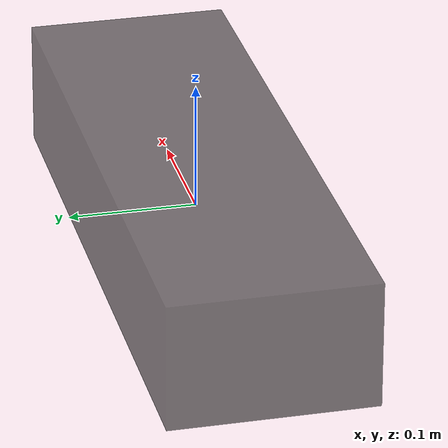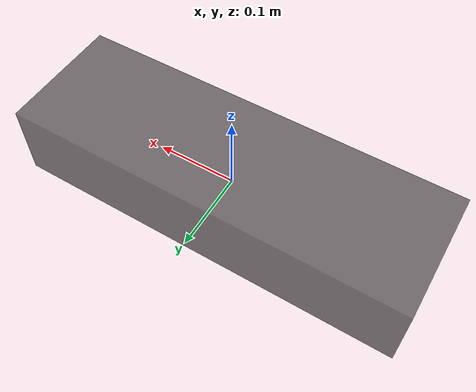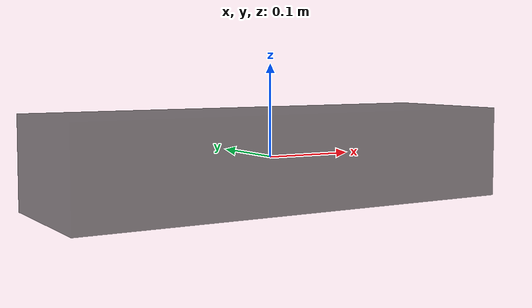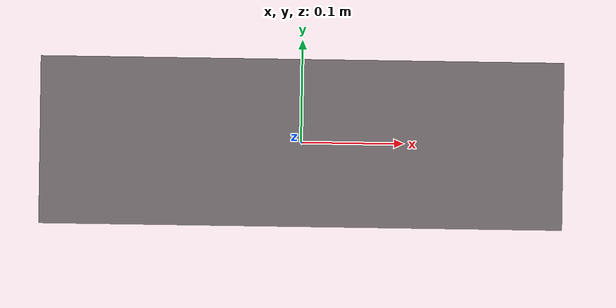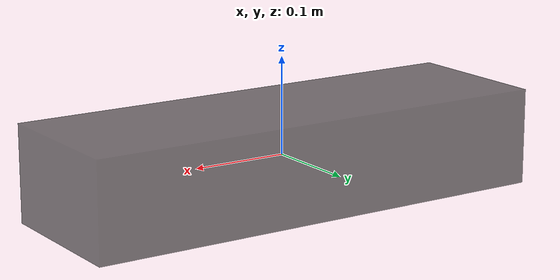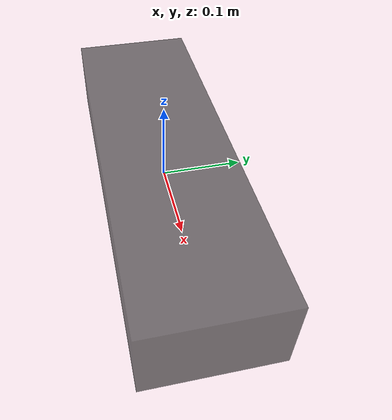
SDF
<?xml version="1.0"?>
<sdf version="1.7">
  <model name="block">
    <link name="block">
      <inertial>
        <pose>0 0 0 0 0 0</pose>
        <mass>.5</mass>
        <!-- Inertia values were calculated to be consistent with the mass and
             geometry size, assuming a uniform density. -->
        <inertia>
          <ixx>0.001483</ixx>
          <ixy>0</ixy>
          <ixz>0</ixz>
          <iyy>0.0108333</iyy>
          <iyz>0</iyz>
          <izz>0.011483</izz>
        </inertia>
      </inertial>

      <visual name="block">
        <pose>0 0 0.0 0 0 0</pose>
        <geometry>
          <box>
            <size>0.5 0.16 0.1</size>
          </box>
        </geometry>
        <material>
          <diffuse>0.1 0.1 0.1 0.6</diffuse>
        </material>
      </visual>

      <collision name="block">
        <pose>0 0 0.0 0 0 0</pose>
        <geometry>
          <box>
            <size>0.5 0.16 0.1</size>
          </box>
        </geometry>
	<surface>
	  <friction>
	    <ode>
	      <mu>1.0</mu>
	      <mu2>1.0</mu2>
	    </ode>
	  </friction>
	</surface>
        <drake:proximity_properties>
          <drake:compliant_hydroelastic/>
          <drake:hydroelastic_modulus> 5e6 </drake:hydroelastic_modulus>
          <drake:mesh_resolution_hint> 0.1 </drake:mesh_resolution_hint>
          <drake:hunt_crossley_dissipation>3.0</drake:hunt_crossley_dissipation>
        </drake:proximity_properties>
      </collision>
    </link>
  </model>
</sdf>
